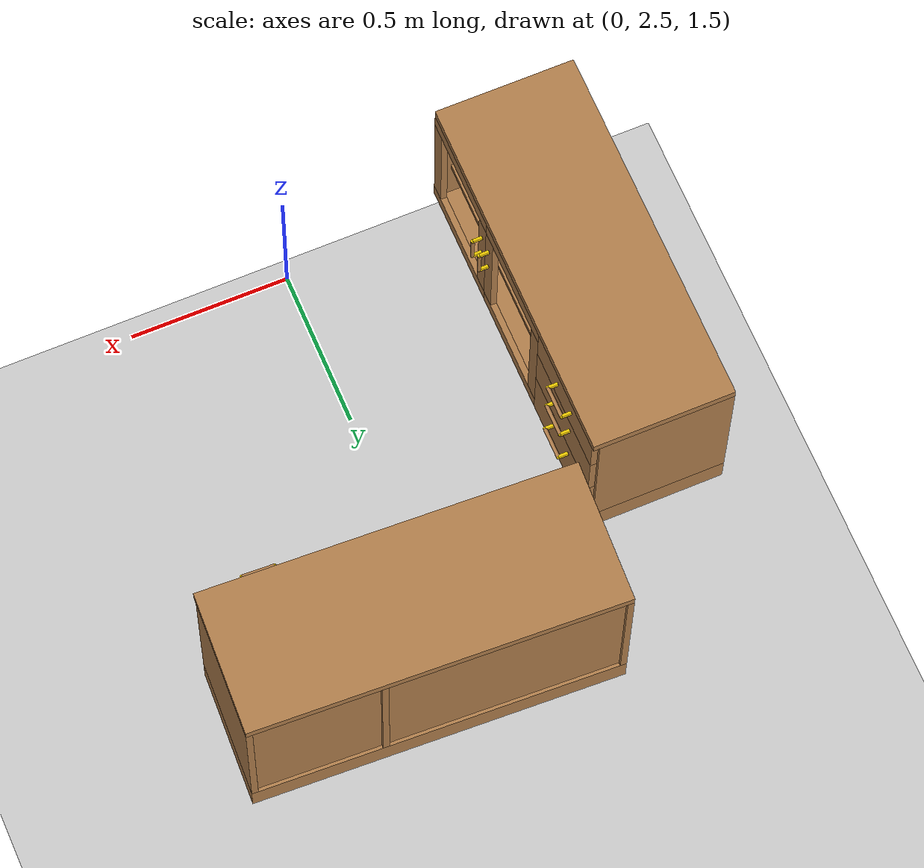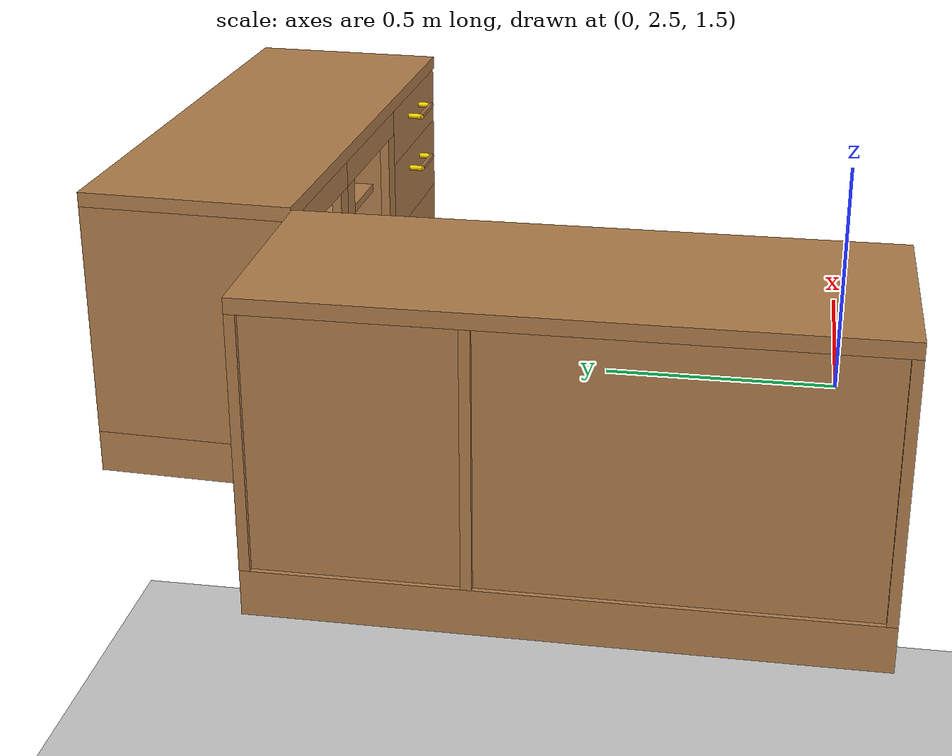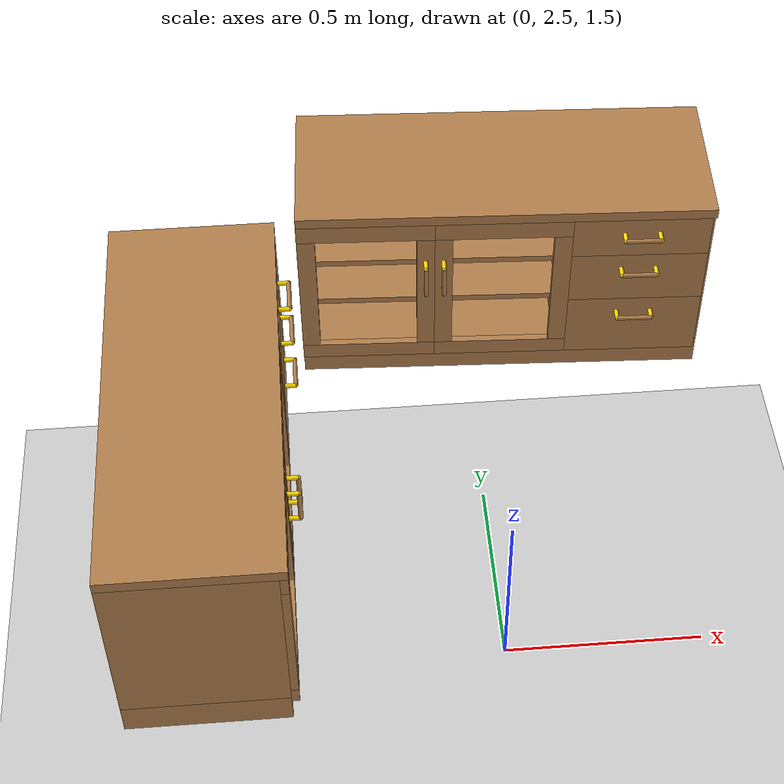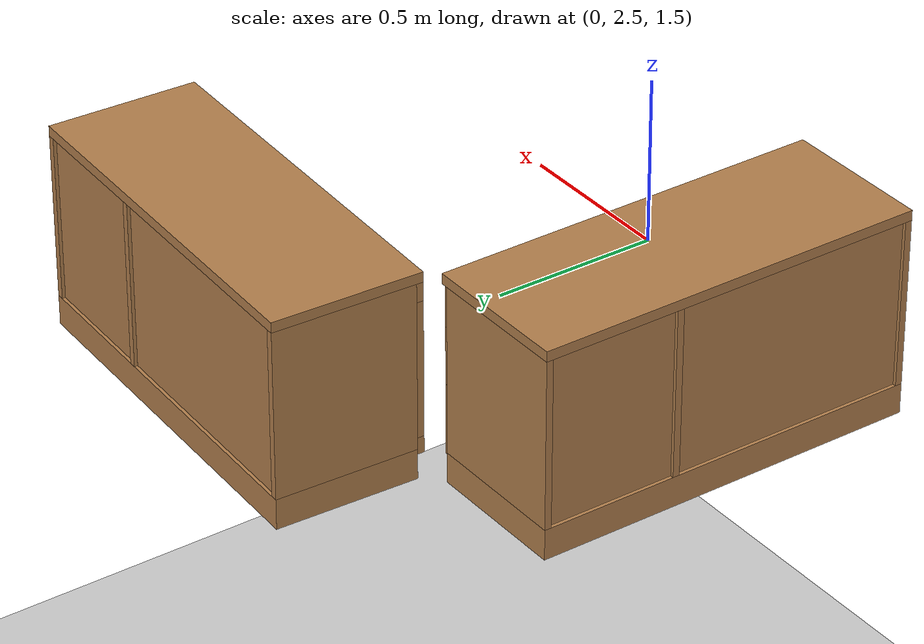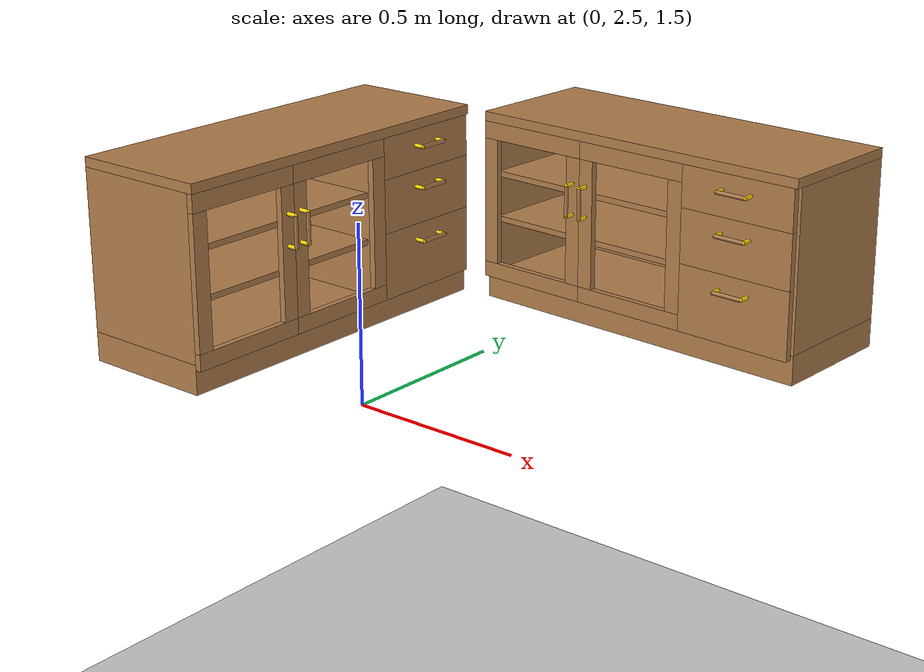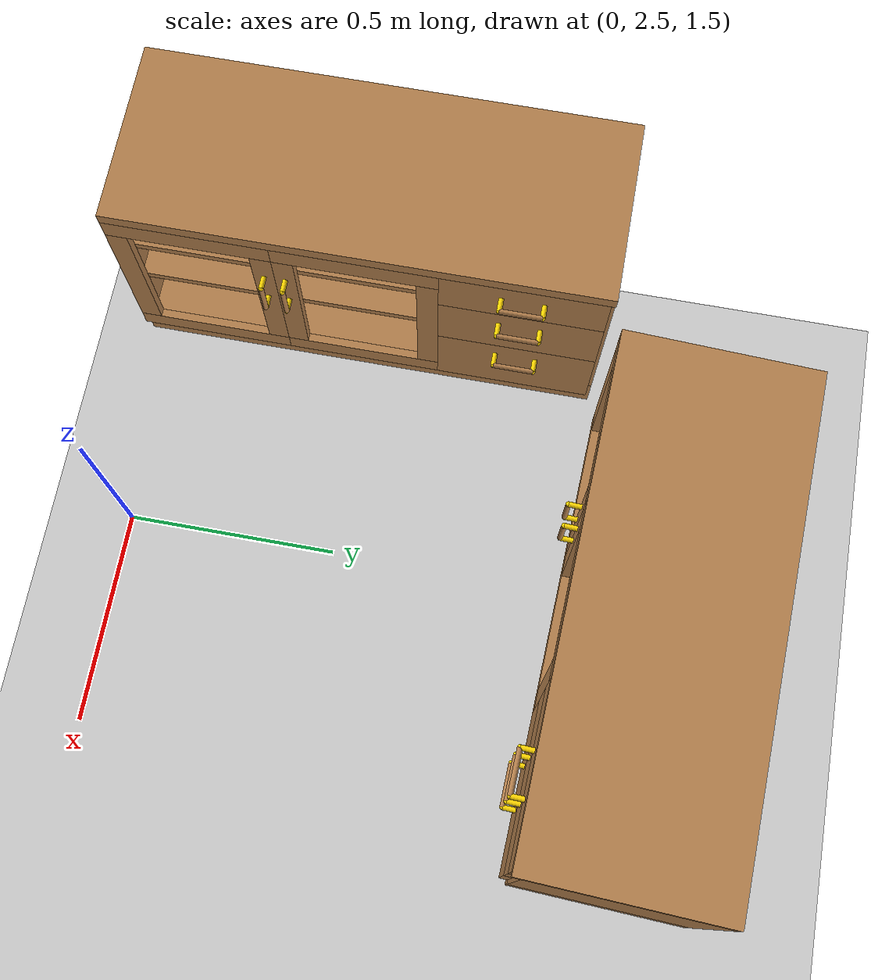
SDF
<sdf version="1.6">
 <world name="default">
  <model name="ground_plane">
   <static>1</static>
   <link name="link">
    <collision name="collision">
     <geometry><plane><normal>0 0 1</normal><size>100 100</size></plane></geometry>
     <surface><friction><ode><mu>100</mu><mu2>50</mu2></ode></friction></surface>
    </collision>
    <visual name="visual">
     <cast_shadows>0</cast_shadows>
     <geometry><plane><normal>0 0 1</normal><size>100 100</size></plane></geometry>
     <material>
      <script><uri>file://media/materials/scripts/gazebo.material</uri><name>Gazebo/Grey</name></script>
     </material>
    </visual>
   </link>
  </model>
  <model name="living_sideboard_0">
   <link name="link">
    <inertial>
     <mass>10</mass>
     <inertia><ixx>1</ixx><ixy>0</ixy><ixz>0</ixz><iyy>1</iyy><iyz>0</iyz><izz>1</izz></inertia>
    </inertial>
    <visual name="left_board">
     <pose>-0.23 0.01 0.3375 0 -0 0</pose>
     <geometry><box><size>0.42 0.02 0.495</size></box></geometry>
     <material>
      <script><uri>model://base_materials/wood/scripts/wood.material</uri><name>base_materials/wood</name></script>
     </material>
    </visual>
    <collision name="collision_left_board">
     <pose>-0.23 0.01 0.3375 0 -0 0</pose>
     <geometry><box><size>0.42 0.02 0.495</size></box></geometry>
    </collision>
    <visual name="back_board">
     <pose>-0.42 0.575 0.2925 0 -0 0</pose>
     <geometry><box><size>0.02 1.11 0.585</size></box></geometry>
     <material>
      <script><uri>model://base_materials/wood/scripts/wood.material</uri><name>base_materials/wood</name></script>
     </material>
    </visual>
    <collision name="collision_back_board">
     <pose>-0.42 0.575 0.2925 0 -0 0</pose>
     <geometry><box><size>0.02 1.11 0.585</size></box></geometry>
    </collision>
    <visual name="right_board">
     <pose>-0.23 1.14 0.3375 0 -0 0</pose>
     <geometry><box><size>0.42 0.02 0.495</size></box></geometry>
     <material>
      <script><uri>model://base_materials/wood/scripts/wood.material</uri><name>base_materials/wood</name></script>
     </material>
    </visual>
    <collision name="collision_right_board">
     <pose>-0.23 1.14 0.3375 0 -0 0</pose>
     <geometry><box><size>0.42 0.02 0.495</size></box></geometry>
    </collision>
    <visual name="center_vertical_board1">
     <pose>-0.23 0.74 0.3375 0 -0 0</pose>
     <geometry><box><size>0.42 0.02 0.495</size></box></geometry>
     <material>
      <script><uri>model://base_materials/wood/scripts/wood.material</uri><name>base_materials/wood</name></script>
     </material>
    </visual>
    <collision name="collision_center_vertical_board1">
     <pose>-0.23 0.74 0.3375 0 -0 0</pose>
     <geometry><box><size>0.42 0.02 0.495</size></box></geometry>
    </collision>
    <visual name="top_board">
     <pose>-0.22 0.575 0.6 0 -0 0</pose>
     <geometry><box><size>0.44 1.15 0.03</size></box></geometry>
     <material>
      <script><uri>model://base_materials/wood/scripts/wood.material</uri><name>base_materials/wood</name></script>
     </material>
    </visual>
    <collision name="collision_top_board">
     <pose>-0.22 0.575 0.6 0 -0 0</pose>
     <geometry><box><size>0.44 1.15 0.03</size></box></geometry>
    </collision>
    <visual name="bottom_board">
     <pose>-0.23 0.575 0.045 0 -0 0</pose>
     <geometry><box><size>0.42 1.15 0.09</size></box></geometry>
     <material>
      <script><uri>model://base_materials/wood/scripts/wood.material</uri><name>base_materials/wood</name></script>
     </material>
    </visual>
    <collision name="collision_bottom_board">
     <pose>-0.23 0.575 0.045 0 -0 0</pose>
     <geometry><box><size>0.42 1.15 0.09</size></box></geometry>
    </collision>
    <visual name="1st_shelf">
     <pose>-0.225 0.37 0.259 0 -0 0</pose>
     <geometry><box><size>0.36 0.72 0.018</size></box></geometry>
     <material>
      <script><uri>model://base_materials/wood/scripts/wood.material</uri><name>base_materials/wood</name></script>
     </material>
    </visual>
    <collision name="collision_1st_shelf">
     <pose>-0.225 0.37 0.259 0 -0 0</pose>
     <geometry><box><size>0.36 0.72 0.018</size></box></geometry>
    </collision>
    <visual name="2nd_shelf">
     <pose>-0.225 0.37 0.407 0 -0 0</pose>
     <geometry><box><size>0.36 0.72 0.018</size></box></geometry>
     <material>
      <script><uri>model://base_materials/wood/scripts/wood.material</uri><name>base_materials/wood</name></script>
     </material>
    </visual>
    <collision name="collision_2nd_shelf">
     <pose>-0.225 0.37 0.407 0 -0 0</pose>
     <geometry><box><size>0.36 0.72 0.018</size></box></geometry>
    </collision>
    <visual name="1st_drawer">
     <pose>-0.2025 0.95 0.52 0 -0 0</pose>
     <geometry><box><size>0.405 0.38 0.13</size></box></geometry>
     <material>
      <script><uri>model://base_materials/wood/scripts/wood.material</uri><name>base_materials/wood</name></script>
     </material>
    </visual>
    <collision name="collision_1st_drawer">
     <pose>-0.2025 0.95 0.52 0 -0 0</pose>
     <geometry><box><size>0.405 0.38 0.13</size></box></geometry>
    </collision>
    <visual name="1st_drawer_handle_l1">
     <pose>0.015 0.9015 0.535 3.14159 1.57079 3.14159</pose>
     <geometry><cylinder><radius>0.006</radius><length>0.03</length></cylinder></geometry>
     <material>
      <ambient>1 0.84314 0 1</ambient>
      <diffuse>1 0.84314 0 1</diffuse>
      <specular>0.1 0.1 0.1 1</specular>
     </material>
    </visual>
    <collision name="collision_1st_drawer_handle_l1">
     <pose>0.015 0.9015 0.535 3.14159 1.57079 3.14159</pose>
     <geometry><cylinder><radius>0.006</radius><length>0.03</length></cylinder></geometry>
    </collision>
    <visual name="1st_drawer_handle_l2">
     <pose>0.03 0.9015 0.535 0 -0 0</pose>
     <geometry><sphere><radius>0.006</radius></sphere></geometry>
     <material>
      <ambient>1 0.84314 0 1</ambient>
      <diffuse>1 0.84314 0 1</diffuse>
      <specular>0.1 0.1 0.1 1</specular>
     </material>
    </visual>
    <collision name="collision_1st_drawer_handle_l2">
     <pose>0.03 0.9015 0.535 0 -0 0</pose>
     <geometry><sphere><radius>0.006</radius></sphere></geometry>
    </collision>
    <visual name="1st_drawer_handle_r1">
     <pose>0.015 0.9985 0.535 3.14159 1.57079 3.14159</pose>
     <geometry><cylinder><radius>0.006</radius><length>0.03</length></cylinder></geometry>
     <material>
      <ambient>1 0.84314 0 1</ambient>
      <diffuse>1 0.84314 0 1</diffuse>
      <specular>0.1 0.1 0.1 1</specular>
     </material>
    </visual>
    <collision name="collision_1st_drawer_handle_r1">
     <pose>0.015 0.9985 0.535 3.14159 1.57079 3.14159</pose>
     <geometry><cylinder><radius>0.006</radius><length>0.03</length></cylinder></geometry>
    </collision>
    <visual name="1st_drawer_handle_r2">
     <pose>0.03 0.9985 0.535 0 -0 0</pose>
     <geometry><sphere><radius>0.006</radius></sphere></geometry>
     <material>
      <ambient>1 0.84314 0 1</ambient>
      <diffuse>1 0.84314 0 1</diffuse>
      <specular>0.1 0.1 0.1 1</specular>
     </material>
    </visual>
    <collision name="collision_1st_drawer_handle_r2">
     <pose>0.03 0.9985 0.535 0 -0 0</pose>
     <geometry><sphere><radius>0.006</radius></sphere></geometry>
    </collision>
    <visual name="1st_drawer_handle_center">
     <pose>0.03 0.95 0.535 1.5708 -0 0</pose>
     <geometry><cylinder><radius>0.006</radius><length>0.097</length></cylinder></geometry>
     <material>
      <script><uri>model://base_materials/wood/scripts/wood.material</uri><name>base_materials/wood</name></script>
     </material>
    </visual>
    <collision name="collision_1st_drawer_handle_center">
     <pose>0.03 0.95 0.535 1.5708 -0 0</pose>
     <geometry><cylinder><radius>0.006</radius><length>0.097</length></cylinder></geometry>
    </collision>
    <visual name="2nd_drawer">
     <pose>-0.2025 0.95 0.37 0 -0 0</pose>
     <geometry><box><size>0.405 0.38 0.17</size></box></geometry>
     <material>
      <script><uri>model://base_materials/wood/scripts/wood.material</uri><name>base_materials/wood</name></script>
     </material>
    </visual>
    <collision name="collision_2nd_drawer">
     <pose>-0.2025 0.95 0.37 0 -0 0</pose>
     <geometry><box><size>0.405 0.38 0.17</size></box></geometry>
    </collision>
    <visual name="2nd_drawer_handle_l1">
     <pose>0.015 0.9015 0.405 3.14159 1.57079 3.14159</pose>
     <geometry><cylinder><radius>0.006</radius><length>0.03</length></cylinder></geometry>
     <material>
      <ambient>1 0.84314 0 1</ambient>
      <diffuse>1 0.84314 0 1</diffuse>
      <specular>0.1 0.1 0.1 1</specular>
     </material>
    </visual>
    <collision name="collision_2nd_drawer_handle_l1">
     <pose>0.015 0.9015 0.405 3.14159 1.57079 3.14159</pose>
     <geometry><cylinder><radius>0.006</radius><length>0.03</length></cylinder></geometry>
    </collision>
    <visual name="2nd_drawer_handle_l2">
     <pose>0.03 0.9015 0.405 0 -0 0</pose>
     <geometry><sphere><radius>0.006</radius></sphere></geometry>
     <material>
      <ambient>1 0.84314 0 1</ambient>
      <diffuse>1 0.84314 0 1</diffuse>
      <specular>0.1 0.1 0.1 1</specular>
     </material>
    </visual>
    <collision name="collision_2nd_drawer_handle_l2">
     <pose>0.03 0.9015 0.405 0 -0 0</pose>
     <geometry><sphere><radius>0.006</radius></sphere></geometry>
    </collision>
    <visual name="2nd_drawer_handle_r1">
     <pose>0.015 0.9985 0.405 3.14159 1.57079 3.14159</pose>
     <geometry><cylinder><radius>0.006</radius><length>0.03</length></cylinder></geometry>
     <material>
      <ambient>1 0.84314 0 1</ambient>
      <diffuse>1 0.84314 0 1</diffuse>
      <specular>0.1 0.1 0.1 1</specular>
     </material>
    </visual>
    <collision name="collision_2nd_drawer_handle_r1">
     <pose>0.015 0.9985 0.405 3.14159 1.57079 3.14159</pose>
     <geometry><cylinder><radius>0.006</radius><length>0.03</length></cylinder></geometry>
    </collision>
    <visual name="2nd_drawer_handle_r2">
     <pose>0.03 0.9985 0.405 0 -0 0</pose>
     <geometry><sphere><radius>0.006</radius></sphere></geometry>
     <material>
      <ambient>1 0.84314 0 1</ambient>
      <diffuse>1 0.84314 0 1</diffuse>
      <specular>0.1 0.1 0.1 1</specular>
     </material>
    </visual>
    <collision name="collision_2nd_drawer_handle_r2">
     <pose>0.03 0.9985 0.405 0 -0 0</pose>
     <geometry><sphere><radius>0.006</radius></sphere></geometry>
    </collision>
    <visual name="2nd_drawer_handle_center">
     <pose>0.03 0.95 0.405 1.5708 -0 0</pose>
     <geometry><cylinder><radius>0.006</radius><length>0.097</length></cylinder></geometry>
     <material>
      <script><uri>model://base_materials/wood/scripts/wood.material</uri><name>base_materials/wood</name></script>
     </material>
    </visual>
    <collision name="collision_2nd_drawer_handle_center">
     <pose>0.03 0.95 0.405 1.5708 -0 0</pose>
     <geometry><cylinder><radius>0.006</radius><length>0.097</length></cylinder></geometry>
    </collision>
    <visual name="3rd_drawer">
     <pose>-0.2025 0.95 0.18 0 -0 0</pose>
     <geometry><box><size>0.405 0.38 0.21</size></box></geometry>
     <material>
      <script><uri>model://base_materials/wood/scripts/wood.material</uri><name>base_materials/wood</name></script>
     </material>
    </visual>
    <collision name="collision_3rd_drawer">
     <pose>-0.2025 0.95 0.18 0 -0 0</pose>
     <geometry><box><size>0.405 0.38 0.21</size></box></geometry>
    </collision>
    <visual name="3rd_drawer_handle_l1">
     <pose>0.015 0.9015 0.235 3.14159 1.57079 3.14159</pose>
     <geometry><cylinder><radius>0.006</radius><length>0.03</length></cylinder></geometry>
     <material>
      <ambient>1 0.84314 0 1</ambient>
      <diffuse>1 0.84314 0 1</diffuse>
      <specular>0.1 0.1 0.1 1</specular>
     </material>
    </visual>
    <collision name="collision_3rd_drawer_handle_l1">
     <pose>0.015 0.9015 0.235 3.14159 1.57079 3.14159</pose>
     <geometry><cylinder><radius>0.006</radius><length>0.03</length></cylinder></geometry>
    </collision>
    <visual name="3rd_drawer_handle_l2">
     <pose>0.03 0.9015 0.235 0 -0 0</pose>
     <geometry><sphere><radius>0.006</radius></sphere></geometry>
     <material>
      <ambient>1 0.84314 0 1</ambient>
      <diffuse>1 0.84314 0 1</diffuse>
      <specular>0.1 0.1 0.1 1</specular>
     </material>
    </visual>
    <collision name="collision_3rd_drawer_handle_l2">
     <pose>0.03 0.9015 0.235 0 -0 0</pose>
     <geometry><sphere><radius>0.006</radius></sphere></geometry>
    </collision>
    <visual name="3rd_drawer_handle_r1">
     <pose>0.015 0.9985 0.235 3.14159 1.57079 3.14159</pose>
     <geometry><cylinder><radius>0.006</radius><length>0.03</length></cylinder></geometry>
     <material>
      <ambient>1 0.84314 0 1</ambient>
      <diffuse>1 0.84314 0 1</diffuse>
      <specular>0.1 0.1 0.1 1</specular>
     </material>
    </visual>
    <collision name="collision_3rd_drawer_handle_r1">
     <pose>0.015 0.9985 0.235 3.14159 1.57079 3.14159</pose>
     <geometry><cylinder><radius>0.006</radius><length>0.03</length></cylinder></geometry>
    </collision>
    <visual name="3rd_drawer_handle_r2">
     <pose>0.03 0.9985 0.235 0 -0 0</pose>
     <geometry><sphere><radius>0.006</radius></sphere></geometry>
     <material>
      <ambient>1 0.84314 0 1</ambient>
      <diffuse>1 0.84314 0 1</diffuse>
      <specular>0.1 0.1 0.1 1</specular>
     </material>
    </visual>
    <collision name="collision_3rd_drawer_handle_r2">
     <pose>0.03 0.9985 0.235 0 -0 0</pose>
     <geometry><sphere><radius>0.006</radius></sphere></geometry>
    </collision>
    <visual name="3rd_drawer_handle_center">
     <pose>0.03 0.95 0.235 1.5708 -0 0</pose>
     <geometry><cylinder><radius>0.006</radius><length>0.097</length></cylinder></geometry>
     <material>
      <script><uri>model://base_materials/wood/scripts/wood.material</uri><name>base_materials/wood</name></script>
     </material>
    </visual>
    <collision name="collision_3rd_drawer_handle_center">
     <pose>0.03 0.95 0.235 1.5708 -0 0</pose>
     <geometry><cylinder><radius>0.006</radius><length>0.097</length></cylinder></geometry>
    </collision>
    <visual name="left_door_left_frame">
     <pose>-0.01 0.025 0.3275 0 -0 0</pose>
     <geometry><box><size>0.02 0.05 0.405</size></box></geometry>
     <material>
      <script><uri>model://base_materials/wood/scripts/wood.material</uri><name>base_materials/wood</name></script>
     </material>
    </visual>
    <collision name="collision_left_door_left_frame">
     <pose>-0.01 0.025 0.3275 0 -0 0</pose>
     <geometry><box><size>0.02 0.05 0.405</size></box></geometry>
    </collision>
    <visual name="left_door_right_frame">
     <pose>-0.01 0.355 0.3275 0 -0 0</pose>
     <geometry><box><size>0.02 0.05 0.405</size></box></geometry>
     <material>
      <script><uri>model://base_materials/wood/scripts/wood.material</uri><name>base_materials/wood</name></script>
     </material>
    </visual>
    <collision name="collision_left_door_right_frame">
     <pose>-0.01 0.355 0.3275 0 -0 0</pose>
     <geometry><box><size>0.02 0.05 0.405</size></box></geometry>
    </collision>
    <visual name="left_door_handle_top1">
     <pose>0.015 0.355 0.4475 3.14159 1.57079 3.14159</pose>
     <geometry><cylinder><radius>0.006</radius><length>0.03</length></cylinder></geometry>
     <material>
      <ambient>1 0.84314 0 1</ambient>
      <diffuse>1 0.84314 0 1</diffuse>
      <specular>0.1 0.1 0.1 1</specular>
     </material>
    </visual>
    <collision name="collision_left_door_handle_top1">
     <pose>0.015 0.355 0.4475 3.14159 1.57079 3.14159</pose>
     <geometry><cylinder><radius>0.006</radius><length>0.03</length></cylinder></geometry>
    </collision>
    <visual name="left_door_handle_top2">
     <pose>0.03 0.355 0.4475 0 -0 0</pose>
     <geometry><sphere><radius>0.006</radius></sphere></geometry>
     <material>
      <ambient>1 0.84314 0 1</ambient>
      <diffuse>1 0.84314 0 1</diffuse>
      <specular>0.1 0.1 0.1 1</specular>
     </material>
    </visual>
    <collision name="collision_left_door_handle_top2">
     <pose>0.03 0.355 0.4475 0 -0 0</pose>
     <geometry><sphere><radius>0.006</radius></sphere></geometry>
    </collision>
    <visual name="left_door_handle_bottom1">
     <pose>0.015 0.355 0.3505 3.14159 1.57079 3.14159</pose>
     <geometry><cylinder><radius>0.006</radius><length>0.03</length></cylinder></geometry>
     <material>
      <ambient>1 0.84314 0 1</ambient>
      <diffuse>1 0.84314 0 1</diffuse>
      <specular>0.1 0.1 0.1 1</specular>
     </material>
    </visual>
    <collision name="collision_left_door_handle_bottom1">
     <pose>0.015 0.355 0.3505 3.14159 1.57079 3.14159</pose>
     <geometry><cylinder><radius>0.006</radius><length>0.03</length></cylinder></geometry>
    </collision>
    <visual name="left_door_handle_bottom2">
     <pose>0.03 0.355 0.3505 0 -0 0</pose>
     <geometry><sphere><radius>0.006</radius></sphere></geometry>
     <material>
      <ambient>1 0.84314 0 1</ambient>
      <diffuse>1 0.84314 0 1</diffuse>
      <specular>0.1 0.1 0.1 1</specular>
     </material>
    </visual>
    <collision name="collision_left_door_handle_bottom2">
     <pose>0.03 0.355 0.3505 0 -0 0</pose>
     <geometry><sphere><radius>0.006</radius></sphere></geometry>
    </collision>
    <visual name="left_door_handle_center">
     <pose>0.03 0.355 0.399 0 -0 0</pose>
     <geometry><cylinder><radius>0.006</radius><length>0.097</length></cylinder></geometry>
     <material>
      <script><uri>model://base_materials/wood/scripts/wood.material</uri><name>base_materials/wood</name></script>
     </material>
    </visual>
    <collision name="collision_left_door_handle_center">
     <pose>0.03 0.355 0.399 0 -0 0</pose>
     <geometry><cylinder><radius>0.006</radius><length>0.097</length></cylinder></geometry>
    </collision>
    <visual name="left_door_top_frame">
     <pose>-0.01 0.19 0.5575 0 -0 0</pose>
     <geometry><box><size>0.02 0.38 0.055</size></box></geometry>
     <material>
      <script><uri>model://base_materials/wood/scripts/wood.material</uri><name>base_materials/wood</name></script>
     </material>
    </visual>
    <collision name="collision_left_door_top_frame">
     <pose>-0.01 0.19 0.5575 0 -0 0</pose>
     <geometry><box><size>0.02 0.38 0.055</size></box></geometry>
    </collision>
    <visual name="left_door_bottom_frame">
     <pose>-0.01 0.19 0.1 0 -0 0</pose>
     <geometry><box><size>0.02 0.38 0.05</size></box></geometry>
     <material>
      <script><uri>model://base_materials/wood/scripts/wood.material</uri><name>base_materials/wood</name></script>
     </material>
    </visual>
    <collision name="collision_left_door_bottom_frame">
     <pose>-0.01 0.19 0.1 0 -0 0</pose>
     <geometry><box><size>0.02 0.38 0.05</size></box></geometry>
    </collision>
    <visual name="right_door_left_frame">
     <pose>-0.01 0.405 0.3275 0 -0 0</pose>
     <geometry><box><size>0.02 0.05 0.405</size></box></geometry>
     <material>
      <script><uri>model://base_materials/wood/scripts/wood.material</uri><name>base_materials/wood</name></script>
     </material>
    </visual>
    <collision name="collision_right_door_left_frame">
     <pose>-0.01 0.405 0.3275 0 -0 0</pose>
     <geometry><box><size>0.02 0.05 0.405</size></box></geometry>
    </collision>
    <visual name="right_door_right_frame">
     <pose>-0.01 0.735 0.3275 0 -0 0</pose>
     <geometry><box><size>0.02 0.05 0.405</size></box></geometry>
     <material>
      <script><uri>model://base_materials/wood/scripts/wood.material</uri><name>base_materials/wood</name></script>
     </material>
    </visual>
    <collision name="collision_right_door_right_frame">
     <pose>-0.01 0.735 0.3275 0 -0 0</pose>
     <geometry><box><size>0.02 0.05 0.405</size></box></geometry>
    </collision>
    <visual name="right_door_top_frame">
     <pose>-0.01 0.57 0.5575 0 -0 0</pose>
     <geometry><box><size>0.02 0.38 0.055</size></box></geometry>
     <material>
      <script><uri>model://base_materials/wood/scripts/wood.material</uri><name>base_materials/wood</name></script>
     </material>
    </visual>
    <collision name="collision_right_door_top_frame">
     <pose>-0.01 0.57 0.5575 0 -0 0</pose>
     <geometry><box><size>0.02 0.38 0.055</size></box></geometry>
    </collision>
    <visual name="right_door_bottom_frame">
     <pose>-0.01 0.57 0.1 0 -0 0</pose>
     <geometry><box><size>0.02 0.38 0.05</size></box></geometry>
     <material>
      <script><uri>model://base_materials/wood/scripts/wood.material</uri><name>base_materials/wood</name></script>
     </material>
    </visual>
    <collision name="collision_right_door_bottom_frame">
     <pose>-0.01 0.57 0.1 0 -0 0</pose>
     <geometry><box><size>0.02 0.38 0.05</size></box></geometry>
    </collision>
    <visual name="right_door_handle_top1">
     <pose>0.015 0.405 0.4475 3.14159 1.57079 3.14159</pose>
     <geometry><cylinder><radius>0.006</radius><length>0.03</length></cylinder></geometry>
     <material>
      <ambient>1 0.84314 0 1</ambient>
      <diffuse>1 0.84314 0 1</diffuse>
      <specular>0.1 0.1 0.1 1</specular>
     </material>
    </visual>
    <collision name="collision_right_door_handle_top1">
     <pose>0.015 0.405 0.4475 3.14159 1.57079 3.14159</pose>
     <geometry><cylinder><radius>0.006</radius><length>0.03</length></cylinder></geometry>
    </collision>
    <visual name="right_door_handle_top2">
     <pose>0.03 0.405 0.4475 0 -0 0</pose>
     <geometry><sphere><radius>0.006</radius></sphere></geometry>
     <material>
      <ambient>1 0.84314 0 1</ambient>
      <diffuse>1 0.84314 0 1</diffuse>
      <specular>0.1 0.1 0.1 1</specular>
     </material>
    </visual>
    <collision name="collision_right_door_handle_top2">
     <pose>0.03 0.405 0.4475 0 -0 0</pose>
     <geometry><sphere><radius>0.006</radius></sphere></geometry>
    </collision>
    <visual name="right_door_handle_bottom1">
     <pose>0.015 0.405 0.3505 3.14159 1.57079 3.14159</pose>
     <geometry><cylinder><radius>0.006</radius><length>0.03</length></cylinder></geometry>
     <material>
      <ambient>1 0.84314 0 1</ambient>
      <diffuse>1 0.84314 0 1</diffuse>
      <specular>0.1 0.1 0.1 1</specular>
     </material>
    </visual>
    <collision name="collision_right_door_handle_bottom1">
     <pose>0.015 0.405 0.3505 3.14159 1.57079 3.14159</pose>
     <geometry><cylinder><radius>0.006</radius><length>0.03</length></cylinder></geometry>
    </collision>
    <visual name="right_door_handle_bottom2">
     <pose>0.03 0.405 0.3505 0 -0 0</pose>
     <geometry><sphere><radius>0.006</radius></sphere></geometry>
     <material>
      <ambient>1 0.84314 0 1</ambient>
      <diffuse>1 0.84314 0 1</diffuse>
      <specular>0.1 0.1 0.1 1</specular>
     </material>
    </visual>
    <collision name="collision_right_door_handle_bottom2">
     <pose>0.03 0.405 0.3505 0 -0 0</pose>
     <geometry><sphere><radius>0.006</radius></sphere></geometry>
    </collision>
    <visual name="right_door_handle_center">
     <pose>0.03 0.405 0.399 0 -0 0</pose>
     <geometry><cylinder><radius>0.006</radius><length>0.097</length></cylinder></geometry>
     <material>
      <script><uri>model://base_materials/wood/scripts/wood.material</uri><name>base_materials/wood</name></script>
     </material>
    </visual>
    <collision name="collision_right_door_handle_center">
     <pose>0.03 0.4 0.399 0 -0 0</pose>
     <geometry><cylinder><radius>0.006</radius><length>0.097</length></cylinder></geometry>
    </collision>
    <velocity_decay><linear>0</linear><angular>0</angular></velocity_decay>
   </link>
   <static>1</static>
   <pose>-0.465342 3.57264 1.4001 0 0 -1.61604</pose>
  </model>
  <model name="living_sideboard_1">
   <link name="link">
    <inertial>
     <mass>10</mass>
     <inertia><ixx>1</ixx><ixy>0</ixy><ixz>0</ixz><iyy>1</iyy><iyz>0</iyz><izz>1</izz></inertia>
    </inertial>
    <visual name="left_board">
     <pose>-0.23 0.01 0.3375 0 -0 0</pose>
     <geometry><box><size>0.42 0.02 0.495</size></box></geometry>
     <material>
      <script><uri>model://base_materials/wood/scripts/wood.material</uri><name>base_materials/wood</name></script>
     </material>
    </visual>
    <collision name="collision_left_board">
     <pose>-0.23 0.01 0.3375 0 -0 0</pose>
     <geometry><box><size>0.42 0.02 0.495</size></box></geometry>
    </collision>
    <visual name="back_board">
     <pose>-0.42 0.575 0.2925 0 -0 0</pose>
     <geometry><box><size>0.02 1.11 0.585</size></box></geometry>
     <material>
      <script><uri>model://base_materials/wood/scripts/wood.material</uri><name>base_materials/wood</name></script>
     </material>
    </visual>
    <collision name="collision_back_board">
     <pose>-0.42 0.575 0.2925 0 -0 0</pose>
     <geometry><box><size>0.02 1.11 0.585</size></box></geometry>
    </collision>
    <visual name="right_board">
     <pose>-0.23 1.14 0.3375 0 -0 0</pose>
     <geometry><box><size>0.42 0.02 0.495</size></box></geometry>
     <material>
      <script><uri>model://base_materials/wood/scripts/wood.material</uri><name>base_materials/wood</name></script>
     </material>
    </visual>
    <collision name="collision_right_board">
     <pose>-0.23 1.14 0.3375 0 -0 0</pose>
     <geometry><box><size>0.42 0.02 0.495</size></box></geometry>
    </collision>
    <visual name="center_vertical_board1">
     <pose>-0.23 0.74 0.3375 0 -0 0</pose>
     <geometry><box><size>0.42 0.02 0.495</size></box></geometry>
     <material>
      <script><uri>model://base_materials/wood/scripts/wood.material</uri><name>base_materials/wood</name></script>
     </material>
    </visual>
    <collision name="collision_center_vertical_board1">
     <pose>-0.23 0.74 0.3375 0 -0 0</pose>
     <geometry><box><size>0.42 0.02 0.495</size></box></geometry>
    </collision>
    <visual name="top_board">
     <pose>-0.22 0.575 0.6 0 -0 0</pose>
     <geometry><box><size>0.44 1.15 0.03</size></box></geometry>
     <material>
      <script><uri>model://base_materials/wood/scripts/wood.material</uri><name>base_materials/wood</name></script>
     </material>
    </visual>
    <collision name="collision_top_board">
     <pose>-0.22 0.575 0.6 0 -0 0</pose>
     <geometry><box><size>0.44 1.15 0.03</size></box></geometry>
    </collision>
    <visual name="bottom_board">
     <pose>-0.23 0.575 0.045 0 -0 0</pose>
     <geometry><box><size>0.42 1.15 0.09</size></box></geometry>
     <material>
      <script><uri>model://base_materials/wood/scripts/wood.material</uri><name>base_materials/wood</name></script>
     </material>
    </visual>
    <collision name="collision_bottom_board">
     <pose>-0.23 0.575 0.045 0 -0 0</pose>
     <geometry><box><size>0.42 1.15 0.09</size></box></geometry>
    </collision>
    <visual name="1st_shelf">
     <pose>-0.225 0.37 0.259 0 -0 0</pose>
     <geometry><box><size>0.36 0.72 0.018</size></box></geometry>
     <material>
      <script><uri>model://base_materials/wood/scripts/wood.material</uri><name>base_materials/wood</name></script>
     </material>
    </visual>
    <collision name="collision_1st_shelf">
     <pose>-0.225 0.37 0.259 0 -0 0</pose>
     <geometry><box><size>0.36 0.72 0.018</size></box></geometry>
    </collision>
    <visual name="2nd_shelf">
     <pose>-0.225 0.37 0.407 0 -0 0</pose>
     <geometry><box><size>0.36 0.72 0.018</size></box></geometry>
     <material>
      <script><uri>model://base_materials/wood/scripts/wood.material</uri><name>base_materials/wood</name></script>
     </material>
    </visual>
    <collision name="collision_2nd_shelf">
     <pose>-0.225 0.37 0.407 0 -0 0</pose>
     <geometry><box><size>0.36 0.72 0.018</size></box></geometry>
    </collision>
    <visual name="1st_drawer">
     <pose>-0.2025 0.95 0.52 0 -0 0</pose>
     <geometry><box><size>0.405 0.38 0.13</size></box></geometry>
     <material>
      <script><uri>model://base_materials/wood/scripts/wood.material</uri><name>base_materials/wood</name></script>
     </material>
    </visual>
    <collision name="collision_1st_drawer">
     <pose>-0.2025 0.95 0.52 0 -0 0</pose>
     <geometry><box><size>0.405 0.38 0.13</size></box></geometry>
    </collision>
    <visual name="1st_drawer_handle_l1">
     <pose>0.015 0.9015 0.535 3.14159 1.57079 3.14159</pose>
     <geometry><cylinder><radius>0.006</radius><length>0.03</length></cylinder></geometry>
     <material>
      <ambient>1 0.84314 0 1</ambient>
      <diffuse>1 0.84314 0 1</diffuse>
      <specular>0.1 0.1 0.1 1</specular>
     </material>
    </visual>
    <collision name="collision_1st_drawer_handle_l1">
     <pose>0.015 0.9015 0.535 3.14159 1.57079 3.14159</pose>
     <geometry><cylinder><radius>0.006</radius><length>0.03</length></cylinder></geometry>
    </collision>
    <visual name="1st_drawer_handle_l2">
     <pose>0.03 0.9015 0.535 0 -0 0</pose>
     <geometry><sphere><radius>0.006</radius></sphere></geometry>
     <material>
      <ambient>1 0.84314 0 1</ambient>
      <diffuse>1 0.84314 0 1</diffuse>
      <specular>0.1 0.1 0.1 1</specular>
     </material>
    </visual>
    <collision name="collision_1st_drawer_handle_l2">
     <pose>0.03 0.9015 0.535 0 -0 0</pose>
     <geometry><sphere><radius>0.006</radius></sphere></geometry>
    </collision>
    <visual name="1st_drawer_handle_r1">
     <pose>0.015 0.9985 0.535 3.14159 1.57079 3.14159</pose>
     <geometry><cylinder><radius>0.006</radius><length>0.03</length></cylinder></geometry>
     <material>
      <ambient>1 0.84314 0 1</ambient>
      <diffuse>1 0.84314 0 1</diffuse>
      <specular>0.1 0.1 0.1 1</specular>
     </material>
    </visual>
    <collision name="collision_1st_drawer_handle_r1">
     <pose>0.015 0.9985 0.535 3.14159 1.57079 3.14159</pose>
     <geometry><cylinder><radius>0.006</radius><length>0.03</length></cylinder></geometry>
    </collision>
    <visual name="1st_drawer_handle_r2">
     <pose>0.03 0.9985 0.535 0 -0 0</pose>
     <geometry><sphere><radius>0.006</radius></sphere></geometry>
     <material>
      <ambient>1 0.84314 0 1</ambient>
      <diffuse>1 0.84314 0 1</diffuse>
      <specular>0.1 0.1 0.1 1</specular>
     </material>
    </visual>
    <collision name="collision_1st_drawer_handle_r2">
     <pose>0.03 0.9985 0.535 0 -0 0</pose>
     <geometry><sphere><radius>0.006</radius></sphere></geometry>
    </collision>
    <visual name="1st_drawer_handle_center">
     <pose>0.03 0.95 0.535 1.5708 -0 0</pose>
     <geometry><cylinder><radius>0.006</radius><length>0.097</length></cylinder></geometry>
     <material>
      <script><uri>model://base_materials/wood/scripts/wood.material</uri><name>base_materials/wood</name></script>
     </material>
    </visual>
    <collision name="collision_1st_drawer_handle_center">
     <pose>0.03 0.95 0.535 1.5708 -0 0</pose>
     <geometry><cylinder><radius>0.006</radius><length>0.097</length></cylinder></geometry>
    </collision>
    <visual name="2nd_drawer">
     <pose>-0.2025 0.95 0.37 0 -0 0</pose>
     <geometry><box><size>0.405 0.38 0.17</size></box></geometry>
     <material>
      <script><uri>model://base_materials/wood/scripts/wood.material</uri><name>base_materials/wood</name></script>
     </material>
    </visual>
    <collision name="collision_2nd_drawer">
     <pose>-0.2025 0.95 0.37 0 -0 0</pose>
     <geometry><box><size>0.405 0.38 0.17</size></box></geometry>
    </collision>
    <visual name="2nd_drawer_handle_l1">
     <pose>0.015 0.9015 0.405 3.14159 1.57079 3.14159</pose>
     <geometry><cylinder><radius>0.006</radius><length>0.03</length></cylinder></geometry>
     <material>
      <ambient>1 0.84314 0 1</ambient>
      <diffuse>1 0.84314 0 1</diffuse>
      <specular>0.1 0.1 0.1 1</specular>
     </material>
    </visual>
    <collision name="collision_2nd_drawer_handle_l1">
     <pose>0.015 0.9015 0.405 3.14159 1.57079 3.14159</pose>
     <geometry><cylinder><radius>0.006</radius><length>0.03</length></cylinder></geometry>
    </collision>
    <visual name="2nd_drawer_handle_l2">
     <pose>0.03 0.9015 0.405 0 -0 0</pose>
     <geometry><sphere><radius>0.006</radius></sphere></geometry>
     <material>
      <ambient>1 0.84314 0 1</ambient>
      <diffuse>1 0.84314 0 1</diffuse>
      <specular>0.1 0.1 0.1 1</specular>
     </material>
    </visual>
    <collision name="collision_2nd_drawer_handle_l2">
     <pose>0.03 0.9015 0.405 0 -0 0</pose>
     <geometry><sphere><radius>0.006</radius></sphere></geometry>
    </collision>
    <visual name="2nd_drawer_handle_r1">
     <pose>0.015 0.9985 0.405 3.14159 1.57079 3.14159</pose>
     <geometry><cylinder><radius>0.006</radius><length>0.03</length></cylinder></geometry>
     <material>
      <ambient>1 0.84314 0 1</ambient>
      <diffuse>1 0.84314 0 1</diffuse>
      <specular>0.1 0.1 0.1 1</specular>
     </material>
    </visual>
    <collision name="collision_2nd_drawer_handle_r1">
     <pose>0.015 0.9985 0.405 3.14159 1.57079 3.14159</pose>
     <geometry><cylinder><radius>0.006</radius><length>0.03</length></cylinder></geometry>
    </collision>
    <visual name="2nd_drawer_handle_r2">
     <pose>0.03 0.9985 0.405 0 -0 0</pose>
     <geometry><sphere><radius>0.006</radius></sphere></geometry>
     <material>
      <ambient>1 0.84314 0 1</ambient>
      <diffuse>1 0.84314 0 1</diffuse>
      <specular>0.1 0.1 0.1 1</specular>
     </material>
    </visual>
    <collision name="collision_2nd_drawer_handle_r2">
     <pose>0.03 0.9985 0.405 0 -0 0</pose>
     <geometry><sphere><radius>0.006</radius></sphere></geometry>
    </collision>
    <visual name="2nd_drawer_handle_center">
     <pose>0.03 0.95 0.405 1.5708 -0 0</pose>
     <geometry><cylinder><radius>0.006</radius><length>0.097</length></cylinder></geometry>
     <material>
      <script><uri>model://base_materials/wood/scripts/wood.material</uri><name>base_materials/wood</name></script>
     </material>
    </visual>
    <collision name="collision_2nd_drawer_handle_center">
     <pose>0.03 0.95 0.405 1.5708 -0 0</pose>
     <geometry><cylinder><radius>0.006</radius><length>0.097</length></cylinder></geometry>
    </collision>
    <visual name="3rd_drawer">
     <pose>-0.2025 0.95 0.18 0 -0 0</pose>
     <geometry><box><size>0.405 0.38 0.21</size></box></geometry>
     <material>
      <script><uri>model://base_materials/wood/scripts/wood.material</uri><name>base_materials/wood</name></script>
     </material>
    </visual>
    <collision name="collision_3rd_drawer">
     <pose>-0.2025 0.95 0.18 0 -0 0</pose>
     <geometry><box><size>0.405 0.38 0.21</size></box></geometry>
    </collision>
    <visual name="3rd_drawer_handle_l1">
     <pose>0.015 0.9015 0.235 3.14159 1.57079 3.14159</pose>
     <geometry><cylinder><radius>0.006</radius><length>0.03</length></cylinder></geometry>
     <material>
      <ambient>1 0.84314 0 1</ambient>
      <diffuse>1 0.84314 0 1</diffuse>
      <specular>0.1 0.1 0.1 1</specular>
     </material>
    </visual>
    <collision name="collision_3rd_drawer_handle_l1">
     <pose>0.015 0.9015 0.235 3.14159 1.57079 3.14159</pose>
     <geometry><cylinder><radius>0.006</radius><length>0.03</length></cylinder></geometry>
    </collision>
    <visual name="3rd_drawer_handle_l2">
     <pose>0.03 0.9015 0.235 0 -0 0</pose>
     <geometry><sphere><radius>0.006</radius></sphere></geometry>
     <material>
      <ambient>1 0.84314 0 1</ambient>
      <diffuse>1 0.84314 0 1</diffuse>
      <specular>0.1 0.1 0.1 1</specular>
     </material>
    </visual>
    <collision name="collision_3rd_drawer_handle_l2">
     <pose>0.03 0.9015 0.235 0 -0 0</pose>
     <geometry><sphere><radius>0.006</radius></sphere></geometry>
    </collision>
    <visual name="3rd_drawer_handle_r1">
     <pose>0.015 0.9985 0.235 3.14159 1.57079 3.14159</pose>
     <geometry><cylinder><radius>0.006</radius><length>0.03</length></cylinder></geometry>
     <material>
      <ambient>1 0.84314 0 1</ambient>
      <diffuse>1 0.84314 0 1</diffuse>
      <specular>0.1 0.1 0.1 1</specular>
     </material>
    </visual>
    <collision name="collision_3rd_drawer_handle_r1">
     <pose>0.015 0.9985 0.235 3.14159 1.57079 3.14159</pose>
     <geometry><cylinder><radius>0.006</radius><length>0.03</length></cylinder></geometry>
    </collision>
    <visual name="3rd_drawer_handle_r2">
     <pose>0.03 0.9985 0.235 0 -0 0</pose>
     <geometry><sphere><radius>0.006</radius></sphere></geometry>
     <material>
      <ambient>1 0.84314 0 1</ambient>
      <diffuse>1 0.84314 0 1</diffuse>
      <specular>0.1 0.1 0.1 1</specular>
     </material>
    </visual>
    <collision name="collision_3rd_drawer_handle_r2">
     <pose>0.03 0.9985 0.235 0 -0 0</pose>
     <geometry><sphere><radius>0.006</radius></sphere></geometry>
    </collision>
    <visual name="3rd_drawer_handle_center">
     <pose>0.03 0.95 0.235 1.5708 -0 0</pose>
     <geometry><cylinder><radius>0.006</radius><length>0.097</length></cylinder></geometry>
     <material>
      <script><uri>model://base_materials/wood/scripts/wood.material</uri><name>base_materials/wood</name></script>
     </material>
    </visual>
    <collision name="collision_3rd_drawer_handle_center">
     <pose>0.03 0.95 0.235 1.5708 -0 0</pose>
     <geometry><cylinder><radius>0.006</radius><length>0.097</length></cylinder></geometry>
    </collision>
    <visual name="left_door_left_frame">
     <pose>-0.01 0.025 0.3275 0 -0 0</pose>
     <geometry><box><size>0.02 0.05 0.405</size></box></geometry>
     <material>
      <script><uri>model://base_materials/wood/scripts/wood.material</uri><name>base_materials/wood</name></script>
     </material>
    </visual>
    <collision name="collision_left_door_left_frame">
     <pose>-0.01 0.025 0.3275 0 -0 0</pose>
     <geometry><box><size>0.02 0.05 0.405</size></box></geometry>
    </collision>
    <visual name="left_door_right_frame">
     <pose>-0.01 0.355 0.3275 0 -0 0</pose>
     <geometry><box><size>0.02 0.05 0.405</size></box></geometry>
     <material>
      <script><uri>model://base_materials/wood/scripts/wood.material</uri><name>base_materials/wood</name></script>
     </material>
    </visual>
    <collision name="collision_left_door_right_frame">
     <pose>-0.01 0.355 0.3275 0 -0 0</pose>
     <geometry><box><size>0.02 0.05 0.405</size></box></geometry>
    </collision>
    <visual name="left_door_handle_top1">
     <pose>0.015 0.355 0.4475 3.14159 1.57079 3.14159</pose>
     <geometry><cylinder><radius>0.006</radius><length>0.03</length></cylinder></geometry>
     <material>
      <ambient>1 0.84314 0 1</ambient>
      <diffuse>1 0.84314 0 1</diffuse>
      <specular>0.1 0.1 0.1 1</specular>
     </material>
    </visual>
    <collision name="collision_left_door_handle_top1">
     <pose>0.015 0.355 0.4475 3.14159 1.57079 3.14159</pose>
     <geometry><cylinder><radius>0.006</radius><length>0.03</length></cylinder></geometry>
    </collision>
    <visual name="left_door_handle_top2">
     <pose>0.03 0.355 0.4475 0 -0 0</pose>
     <geometry><sphere><radius>0.006</radius></sphere></geometry>
     <material>
      <ambient>1 0.84314 0 1</ambient>
      <diffuse>1 0.84314 0 1</diffuse>
      <specular>0.1 0.1 0.1 1</specular>
     </material>
    </visual>
    <collision name="collision_left_door_handle_top2">
     <pose>0.03 0.355 0.4475 0 -0 0</pose>
     <geometry><sphere><radius>0.006</radius></sphere></geometry>
    </collision>
    <visual name="left_door_handle_bottom1">
     <pose>0.015 0.355 0.3505 3.14159 1.57079 3.14159</pose>
     <geometry><cylinder><radius>0.006</radius><length>0.03</length></cylinder></geometry>
     <material>
      <ambient>1 0.84314 0 1</ambient>
      <diffuse>1 0.84314 0 1</diffuse>
      <specular>0.1 0.1 0.1 1</specular>
     </material>
    </visual>
    <collision name="collision_left_door_handle_bottom1">
     <pose>0.015 0.355 0.3505 3.14159 1.57079 3.14159</pose>
     <geometry><cylinder><radius>0.006</radius><length>0.03</length></cylinder></geometry>
    </collision>
    <visual name="left_door_handle_bottom2">
     <pose>0.03 0.355 0.3505 0 -0 0</pose>
     <geometry><sphere><radius>0.006</radius></sphere></geometry>
     <material>
      <ambient>1 0.84314 0 1</ambient>
      <diffuse>1 0.84314 0 1</diffuse>
      <specular>0.1 0.1 0.1 1</specular>
     </material>
    </visual>
    <collision name="collision_left_door_handle_bottom2">
     <pose>0.03 0.355 0.3505 0 -0 0</pose>
     <geometry><sphere><radius>0.006</radius></sphere></geometry>
    </collision>
    <visual name="left_door_handle_center">
     <pose>0.03 0.355 0.399 0 -0 0</pose>
     <geometry><cylinder><radius>0.006</radius><length>0.097</length></cylinder></geometry>
     <material>
      <script><uri>model://base_materials/wood/scripts/wood.material</uri><name>base_materials/wood</name></script>
     </material>
    </visual>
    <collision name="collision_left_door_handle_center">
     <pose>0.03 0.355 0.399 0 -0 0</pose>
     <geometry><cylinder><radius>0.006</radius><length>0.097</length></cylinder></geometry>
    </collision>
    <visual name="left_door_top_frame">
     <pose>-0.01 0.19 0.5575 0 -0 0</pose>
     <geometry><box><size>0.02 0.38 0.055</size></box></geometry>
     <material>
      <script><uri>model://base_materials/wood/scripts/wood.material</uri><name>base_materials/wood</name></script>
     </material>
    </visual>
    <collision name="collision_left_door_top_frame">
     <pose>-0.01 0.19 0.5575 0 -0 0</pose>
     <geometry><box><size>0.02 0.38 0.055</size></box></geometry>
    </collision>
    <visual name="left_door_bottom_frame">
     <pose>-0.01 0.19 0.1 0 -0 0</pose>
     <geometry><box><size>0.02 0.38 0.05</size></box></geometry>
     <material>
      <script><uri>model://base_materials/wood/scripts/wood.material</uri><name>base_materials/wood</name></script>
     </material>
    </visual>
    <collision name="collision_left_door_bottom_frame">
     <pose>-0.01 0.19 0.1 0 -0 0</pose>
     <geometry><box><size>0.02 0.38 0.05</size></box></geometry>
    </collision>
    <visual name="right_door_left_frame">
     <pose>-0.01 0.405 0.3275 0 -0 0</pose>
     <geometry><box><size>0.02 0.05 0.405</size></box></geometry>
     <material>
      <script><uri>model://base_materials/wood/scripts/wood.material</uri><name>base_materials/wood</name></script>
     </material>
    </visual>
    <collision name="collision_right_door_left_frame">
     <pose>-0.01 0.405 0.3275 0 -0 0</pose>
     <geometry><box><size>0.02 0.05 0.405</size></box></geometry>
    </collision>
    <visual name="right_door_right_frame">
     <pose>-0.01 0.735 0.3275 0 -0 0</pose>
     <geometry><box><size>0.02 0.05 0.405</size></box></geometry>
     <material>
      <script><uri>model://base_materials/wood/scripts/wood.material</uri><name>base_materials/wood</name></script>
     </material>
    </visual>
    <collision name="collision_right_door_right_frame">
     <pose>-0.01 0.735 0.3275 0 -0 0</pose>
     <geometry><box><size>0.02 0.05 0.405</size></box></geometry>
    </collision>
    <visual name="right_door_top_frame">
     <pose>-0.01 0.57 0.5575 0 -0 0</pose>
     <geometry><box><size>0.02 0.38 0.055</size></box></geometry>
     <material>
      <script><uri>model://base_materials/wood/scripts/wood.material</uri><name>base_materials/wood</name></script>
     </material>
    </visual>
    <collision name="collision_right_door_top_frame">
     <pose>-0.01 0.57 0.5575 0 -0 0</pose>
     <geometry><box><size>0.02 0.38 0.055</size></box></geometry>
    </collision>
    <visual name="right_door_bottom_frame">
     <pose>-0.01 0.57 0.1 0 -0 0</pose>
     <geometry><box><size>0.02 0.38 0.05</size></box></geometry>
     <material>
      <script><uri>model://base_materials/wood/scripts/wood.material</uri><name>base_materials/wood</name></script>
     </material>
    </visual>
    <collision name="collision_right_door_bottom_frame">
     <pose>-0.01 0.57 0.1 0 -0 0</pose>
     <geometry><box><size>0.02 0.38 0.05</size></box></geometry>
    </collision>
    <visual name="right_door_handle_top1">
     <pose>0.015 0.405 0.4475 3.14159 1.57079 3.14159</pose>
     <geometry><cylinder><radius>0.006</radius><length>0.03</length></cylinder></geometry>
     <material>
      <ambient>1 0.84314 0 1</ambient>
      <diffuse>1 0.84314 0 1</diffuse>
      <specular>0.1 0.1 0.1 1</specular>
     </material>
    </visual>
    <collision name="collision_right_door_handle_top1">
     <pose>0.015 0.405 0.4475 3.14159 1.57079 3.14159</pose>
     <geometry><cylinder><radius>0.006</radius><length>0.03</length></cylinder></geometry>
    </collision>
    <visual name="right_door_handle_top2">
     <pose>0.03 0.405 0.4475 0 -0 0</pose>
     <geometry><sphere><radius>0.006</radius></sphere></geometry>
     <material>
      <ambient>1 0.84314 0 1</ambient>
      <diffuse>1 0.84314 0 1</diffuse>
      <specular>0.1 0.1 0.1 1</specular>
     </material>
    </visual>
    <collision name="collision_right_door_handle_top2">
     <pose>0.03 0.405 0.4475 0 -0 0</pose>
     <geometry><sphere><radius>0.006</radius></sphere></geometry>
    </collision>
    <visual name="right_door_handle_bottom1">
     <pose>0.015 0.405 0.3505 3.14159 1.57079 3.14159</pose>
     <geometry><cylinder><radius>0.006</radius><length>0.03</length></cylinder></geometry>
     <material>
      <ambient>1 0.84314 0 1</ambient>
      <diffuse>1 0.84314 0 1</diffuse>
      <specular>0.1 0.1 0.1 1</specular>
     </material>
    </visual>
    <collision name="collision_right_door_handle_bottom1">
     <pose>0.015 0.405 0.3505 3.14159 1.57079 3.14159</pose>
     <geometry><cylinder><radius>0.006</radius><length>0.03</length></cylinder></geometry>
    </collision>
    <visual name="right_door_handle_bottom2">
     <pose>0.03 0.405 0.3505 0 -0 0</pose>
     <geometry><sphere><radius>0.006</radius></sphere></geometry>
     <material>
      <ambient>1 0.84314 0 1</ambient>
      <diffuse>1 0.84314 0 1</diffuse>
      <specular>0.1 0.1 0.1 1</specular>
     </material>
    </visual>
    <collision name="collision_right_door_handle_bottom2">
     <pose>0.03 0.405 0.3505 0 -0 0</pose>
     <geometry><sphere><radius>0.006</radius></sphere></geometry>
    </collision>
    <visual name="right_door_handle_center">
     <pose>0.03 0.405 0.399 0 -0 0</pose>
     <geometry><cylinder><radius>0.006</radius><length>0.097</length></cylinder></geometry>
     <material>
      <script><uri>model://base_materials/wood/scripts/wood.material</uri><name>base_materials/wood</name></script>
     </material>
    </visual>
    <collision name="collision_right_door_handle_center">
     <pose>0.03 0.4 0.399 0 -0 0</pose>
     <geometry><cylinder><radius>0.006</radius><length>0.097</length></cylinder></geometry>
    </collision>
    <velocity_decay><linear>0</linear><angular>0</angular></velocity_decay>
   </link>
   <static>1</static>
   <pose>-0.519727 2.40393 1.41593 0 -0 0</pose>
  </model>
 </world>
</sdf>
